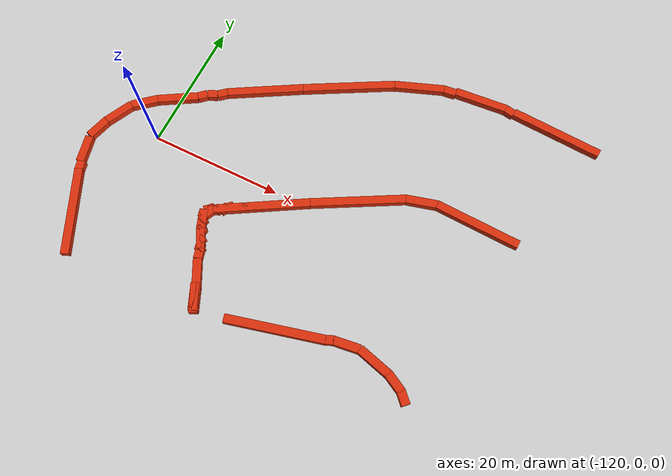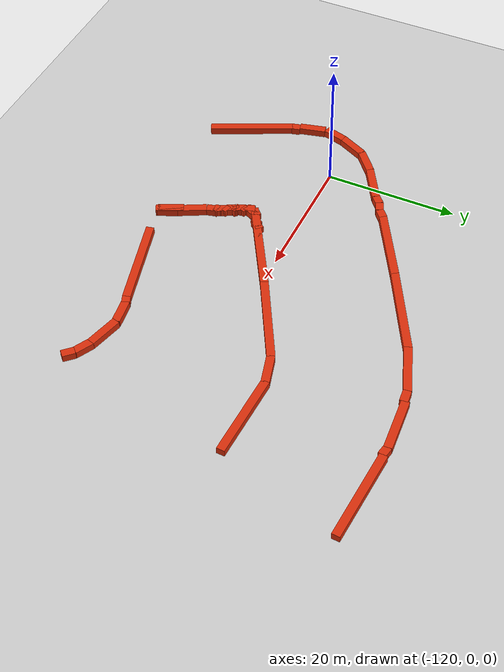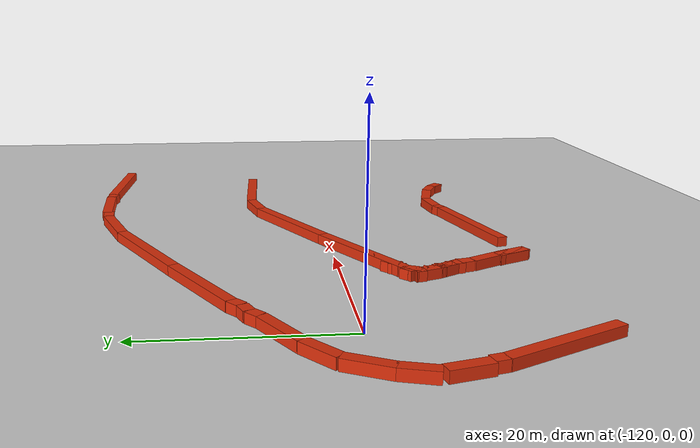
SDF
<sdf version="1.6">
 <world name="default">
  <include><uri>model://ground_plane</uri></include>
  <model name="track_inner_guardrail">
   <static>true</static>
   <link name="seg_191">
    <pose>-72.31 8.13 0.55 0 0 3.1016</pose>
    <collision name="col"><geometry><box><size>12.54 1.20 1.1</size></box></geometry></collision>
    <visual name="vis">
     <geometry><box><size>12.54 1.20 1.1</size></box></geometry>
     <material>
      <ambient>0.35 0.08 0.02 1</ambient>
      <diffuse>0.85 0.18 0.04 1</diffuse>
      <specular>0.2 0.2 0.2 1</specular>
     </material>
    </visual>
   </link>
   <link name="seg_192">
    <pose>-80.67 7.79 0.55 0 0 -2.8781</pose>
    <collision name="col"><geometry><box><size>4.58 1.20 1.1</size></box></geometry></collision>
    <visual name="vis">
     <geometry><box><size>4.58 1.20 1.1</size></box></geometry>
     <material>
      <ambient>0.35 0.08 0.02 1</ambient>
      <diffuse>0.85 0.18 0.04 1</diffuse>
      <specular>0.2 0.2 0.2 1</specular>
     </material>
    </visual>
   </link>
   <link name="seg_193">
    <pose>-88.81 3.93 0.55 0 0 -2.6395</pose>
    <collision name="col"><geometry><box><size>13.77 1.20 1.1</size></box></geometry></collision>
    <visual name="vis">
     <geometry><box><size>13.77 1.20 1.1</size></box></geometry>
     <material>
      <ambient>0.35 0.08 0.02 1</ambient>
      <diffuse>0.85 0.18 0.04 1</diffuse>
      <specular>0.2 0.2 0.2 1</specular>
     </material>
    </visual>
   </link>
   <link name="seg_194">
    <pose>-100.72 -2.83 0.55 0 0 -2.6111</pose>
    <collision name="col"><geometry><box><size>13.86 1.20 1.1</size></box></geometry></collision>
    <visual name="vis">
     <geometry><box><size>13.86 1.20 1.1</size></box></geometry>
     <material>
      <ambient>0.35 0.08 0.02 1</ambient>
      <diffuse>0.85 0.18 0.04 1</diffuse>
      <specular>0.2 0.2 0.2 1</specular>
     </material>
    </visual>
   </link>
   <link name="seg_195">
    <pose>-107.23 -6.68 0.55 0 0 -2.5712</pose>
    <collision name="col"><geometry><box><size>1.51 1.20 1.1</size></box></geometry></collision>
    <visual name="vis">
     <geometry><box><size>1.51 1.20 1.1</size></box></geometry>
     <material>
      <ambient>0.35 0.08 0.02 1</ambient>
      <diffuse>0.85 0.18 0.04 1</diffuse>
      <specular>0.2 0.2 0.2 1</specular>
     </material>
    </visual>
   </link>
   <link name="seg_196">
    <pose>-107.70 -7.55 0.55 0 0 -1.3540</pose>
    <collision name="col"><geometry><box><size>1.12 1.20 1.1</size></box></geometry></collision>
    <visual name="vis">
     <geometry><box><size>1.12 1.20 1.1</size></box></geometry>
     <material>
      <ambient>0.35 0.08 0.02 1</ambient>
      <diffuse>0.85 0.18 0.04 1</diffuse>
      <specular>0.2 0.2 0.2 1</specular>
     </material>
    </visual>
   </link>
   <link name="seg_197">
    <pose>-106.68 -9.79 0.55 0 0 -1.3540</pose>
    <collision name="col"><geometry><box><size>1.12 1.20 1.1</size></box></geometry></collision>
    <visual name="vis">
     <geometry><box><size>1.12 1.20 1.1</size></box></geometry>
     <material>
      <ambient>0.35 0.08 0.02 1</ambient>
      <diffuse>0.85 0.18 0.04 1</diffuse>
      <specular>0.2 0.2 0.2 1</specular>
     </material>
    </visual>
   </link>
   <link name="seg_198">
    <pose>-105.65 -12.02 0.55 0 0 -1.3540</pose>
    <collision name="col"><geometry><box><size>1.12 1.20 1.1</size></box></geometry></collision>
    <visual name="vis">
     <geometry><box><size>1.12 1.20 1.1</size></box></geometry>
     <material>
      <ambient>0.35 0.08 0.02 1</ambient>
      <diffuse>0.85 0.18 0.04 1</diffuse>
      <specular>0.2 0.2 0.2 1</specular>
     </material>
    </visual>
   </link>
   <link name="seg_199">
    <pose>-105.44 -12.11 0.55 0 0 1.2538</pose>
    <collision name="col"><geometry><box><size>0.76 1.20 1.1</size></box></geometry></collision>
    <visual name="vis">
     <geometry><box><size>0.76 1.20 1.1</size></box></geometry>
     <material>
      <ambient>0.35 0.08 0.02 1</ambient>
      <diffuse>0.85 0.18 0.04 1</diffuse>
      <specular>0.2 0.2 0.2 1</specular>
     </material>
    </visual>
   </link>
   <link name="seg_200">
    <pose>-106.02 -10.87 0.55 0 0 1.2538</pose>
    <collision name="col"><geometry><box><size>0.76 1.20 1.1</size></box></geometry></collision>
    <visual name="vis">
     <geometry><box><size>0.76 1.20 1.1</size></box></geometry>
     <material>
      <ambient>0.35 0.08 0.02 1</ambient>
      <diffuse>0.85 0.18 0.04 1</diffuse>
      <specular>0.2 0.2 0.2 1</specular>
     </material>
    </visual>
   </link>
   <link name="seg_201">
    <pose>-106.59 -9.63 0.55 0 0 1.2538</pose>
    <collision name="col"><geometry><box><size>0.76 1.20 1.1</size></box></geometry></collision>
    <visual name="vis">
     <geometry><box><size>0.76 1.20 1.1</size></box></geometry>
     <material>
      <ambient>0.35 0.08 0.02 1</ambient>
      <diffuse>0.85 0.18 0.04 1</diffuse>
      <specular>0.2 0.2 0.2 1</specular>
     </material>
    </visual>
   </link>
   <link name="seg_202">
    <pose>-107.17 -8.39 0.55 0 0 1.2538</pose>
    <collision name="col"><geometry><box><size>0.76 1.20 1.1</size></box></geometry></collision>
    <visual name="vis">
     <geometry><box><size>0.76 1.20 1.1</size></box></geometry>
     <material>
      <ambient>0.35 0.08 0.02 1</ambient>
      <diffuse>0.85 0.18 0.04 1</diffuse>
      <specular>0.2 0.2 0.2 1</specular>
     </material>
    </visual>
   </link>
   <link name="seg_203">
    <pose>-107.06 -6.93 0.55 0 0 1.1276</pose>
    <collision name="col"><geometry><box><size>1.97 1.20 1.1</size></box></geometry></collision>
    <visual name="vis">
     <geometry><box><size>1.97 1.20 1.1</size></box></geometry>
     <material>
      <ambient>0.35 0.08 0.02 1</ambient>
      <diffuse>0.85 0.18 0.04 1</diffuse>
      <specular>0.2 0.2 0.2 1</specular>
     </material>
    </visual>
   </link>
   <link name="seg_204">
    <pose>-106.17 -6.10 0.55 0 0 1.2538</pose>
    <collision name="col"><geometry><box><size>0.76 1.20 1.1</size></box></geometry></collision>
    <visual name="vis">
     <geometry><box><size>0.76 1.20 1.1</size></box></geometry>
     <material>
      <ambient>0.35 0.08 0.02 1</ambient>
      <diffuse>0.85 0.18 0.04 1</diffuse>
      <specular>0.2 0.2 0.2 1</specular>
     </material>
    </visual>
   </link>
   <link name="seg_205">
    <pose>-105.39 -5.58 0.55 0 0 1.0612</pose>
    <collision name="col"><geometry><box><size>1.22 1.20 1.1</size></box></geometry></collision>
    <visual name="vis">
     <geometry><box><size>1.22 1.20 1.1</size></box></geometry>
     <material>
      <ambient>0.35 0.08 0.02 1</ambient>
      <diffuse>0.85 0.18 0.04 1</diffuse>
      <specular>0.2 0.2 0.2 1</specular>
     </material>
    </visual>
   </link>
   <link name="seg_206">
    <pose>-102.78 -3.86 0.55 0 0 1.7331</pose>
    <collision name="col"><geometry><box><size>0.33 1.20 1.1</size></box></geometry></collision>
    <visual name="vis">
     <geometry><box><size>0.33 1.20 1.1</size></box></geometry>
     <material>
      <ambient>0.35 0.08 0.02 1</ambient>
      <diffuse>0.85 0.18 0.04 1</diffuse>
      <specular>0.2 0.2 0.2 1</specular>
     </material>
    </visual>
   </link>
   <link name="seg_207">
    <pose>-104.74 -4.98 0.55 0 0 -2.3533</pose>
    <collision name="col"><geometry><box><size>1.12 1.20 1.1</size></box></geometry></collision>
    <visual name="vis">
     <geometry><box><size>1.12 1.20 1.1</size></box></geometry>
     <material>
      <ambient>0.35 0.08 0.02 1</ambient>
      <diffuse>0.85 0.18 0.04 1</diffuse>
      <specular>0.2 0.2 0.2 1</specular>
     </material>
    </visual>
   </link>
   <link name="seg_208">
    <pose>-107.04 -6.41 0.55 0 0 -2.3533</pose>
    <collision name="col"><geometry><box><size>1.00 1.20 1.1</size></box></geometry></collision>
    <visual name="vis">
     <geometry><box><size>1.00 1.20 1.1</size></box></geometry>
     <material>
      <ambient>0.35 0.08 0.02 1</ambient>
      <diffuse>0.85 0.18 0.04 1</diffuse>
      <specular>0.2 0.2 0.2 1</specular>
     </material>
    </visual>
   </link>
   <link name="seg_209">
    <pose>-107.37 -8.32 0.55 0 0 -1.2262</pose>
    <collision name="col"><geometry><box><size>2.85 1.20 1.1</size></box></geometry></collision>
    <visual name="vis">
     <geometry><box><size>2.85 1.20 1.1</size></box></geometry>
     <material>
      <ambient>0.35 0.08 0.02 1</ambient>
      <diffuse>0.85 0.18 0.04 1</diffuse>
      <specular>0.2 0.2 0.2 1</specular>
     </material>
    </visual>
   </link>
   <link name="seg_210">
    <pose>-106.16 -10.93 0.55 0 0 -1.0537</pose>
    <collision name="col"><geometry><box><size>2.92 1.20 1.1</size></box></geometry></collision>
    <visual name="vis">
     <geometry><box><size>2.92 1.20 1.1</size></box></geometry>
     <material>
      <ambient>0.35 0.08 0.02 1</ambient>
      <diffuse>0.85 0.18 0.04 1</diffuse>
      <specular>0.2 0.2 0.2 1</specular>
     </material>
    </visual>
   </link>
   <link name="seg_211">
    <pose>-105.25 -12.92 0.55 0 0 -1.3124</pose>
    <collision name="col"><geometry><box><size>1.50 1.20 1.1</size></box></geometry></collision>
    <visual name="vis">
     <geometry><box><size>1.50 1.20 1.1</size></box></geometry>
     <material>
      <ambient>0.35 0.08 0.02 1</ambient>
      <diffuse>0.85 0.18 0.04 1</diffuse>
      <specular>0.2 0.2 0.2 1</specular>
     </material>
    </visual>
   </link>
   <link name="seg_212">
    <pose>-104.06 -15.60 0.55 0 0 -1.0975</pose>
    <collision name="col"><geometry><box><size>4.39 1.20 1.1</size></box></geometry></collision>
    <visual name="vis">
     <geometry><box><size>4.39 1.20 1.1</size></box></geometry>
     <material>
      <ambient>0.35 0.08 0.02 1</ambient>
      <diffuse>0.85 0.18 0.04 1</diffuse>
      <specular>0.2 0.2 0.2 1</specular>
     </material>
    </visual>
   </link>
   <link name="seg_213">
    <pose>-102.47 -18.90 0.55 0 0 -1.1580</pose>
    <collision name="col"><geometry><box><size>3.05 1.20 1.1</size></box></geometry></collision>
    <visual name="vis">
     <geometry><box><size>3.05 1.20 1.1</size></box></geometry>
     <material>
      <ambient>0.35 0.08 0.02 1</ambient>
      <diffuse>0.85 0.18 0.04 1</diffuse>
      <specular>0.2 0.2 0.2 1</specular>
     </material>
    </visual>
   </link>
   <link name="seg_238">
    <pose>-102.83 -18.53 0.55 0 0 1.9836</pose>
    <collision name="col"><geometry><box><size>3.86 1.20 1.1</size></box></geometry></collision>
    <visual name="vis">
     <geometry><box><size>3.86 1.20 1.1</size></box></geometry>
     <material>
      <ambient>0.35 0.08 0.02 1</ambient>
      <diffuse>0.85 0.18 0.04 1</diffuse>
      <specular>0.2 0.2 0.2 1</specular>
     </material>
    </visual>
   </link>
   <link name="seg_239">
    <pose>-102.71 -18.64 0.55 0 0 -1.1116</pose>
    <collision name="col"><geometry><box><size>4.18 1.20 1.1</size></box></geometry></collision>
    <visual name="vis">
     <geometry><box><size>4.18 1.20 1.1</size></box></geometry>
     <material>
      <ambient>0.35 0.08 0.02 1</ambient>
      <diffuse>0.85 0.18 0.04 1</diffuse>
      <specular>0.2 0.2 0.2 1</specular>
     </material>
    </visual>
   </link>
   <link name="seg_242">
    <pose>-91.02 -17.57 0.55 0 0 0.2516</pose>
    <collision name="col"><geometry><box><size>13.94 1.20 1.1</size></box></geometry></collision>
    <visual name="vis">
     <geometry><box><size>13.94 1.20 1.1</size></box></geometry>
     <material>
      <ambient>0.35 0.08 0.02 1</ambient>
      <diffuse>0.85 0.18 0.04 1</diffuse>
      <specular>0.2 0.2 0.2 1</specular>
     </material>
    </visual>
   </link>
   <link name="seg_243">
    <pose>-83.82 -15.64 0.55 0 0 0.3868</pose>
    <collision name="col"><geometry><box><size>1.23 1.20 1.1</size></box></geometry></collision>
    <visual name="vis">
     <geometry><box><size>1.23 1.20 1.1</size></box></geometry>
     <material>
      <ambient>0.35 0.08 0.02 1</ambient>
      <diffuse>0.85 0.18 0.04 1</diffuse>
      <specular>0.2 0.2 0.2 1</specular>
     </material>
    </visual>
   </link>
   <link name="seg_244">
    <pose>-81.49 -15.19 0.55 0 0 0.1324</pose>
    <collision name="col"><geometry><box><size>3.78 1.20 1.1</size></box></geometry></collision>
    <visual name="vis">
     <geometry><box><size>3.78 1.20 1.1</size></box></geometry>
     <material>
      <ambient>0.35 0.08 0.02 1</ambient>
      <diffuse>0.85 0.18 0.04 1</diffuse>
      <specular>0.2 0.2 0.2 1</specular>
     </material>
    </visual>
   </link>
   <link name="seg_245">
    <pose>-77.27 -15.56 0.55 0 0 -0.2590</pose>
    <collision name="col"><geometry><box><size>4.96 1.20 1.1</size></box></geometry></collision>
    <visual name="vis">
     <geometry><box><size>4.96 1.20 1.1</size></box></geometry>
     <material>
      <ambient>0.35 0.08 0.02 1</ambient>
      <diffuse>0.85 0.18 0.04 1</diffuse>
      <specular>0.2 0.2 0.2 1</specular>
     </material>
    </visual>
   </link>
   <link name="seg_246">
    <pose>-73.77 -16.80 0.55 0 0 -0.4922</pose>
    <collision name="col"><geometry><box><size>2.75 1.20 1.1</size></box></geometry></collision>
    <visual name="vis">
     <geometry><box><size>2.75 1.20 1.1</size></box></geometry>
     <material>
      <ambient>0.35 0.08 0.02 1</ambient>
      <diffuse>0.85 0.18 0.04 1</diffuse>
      <specular>0.2 0.2 0.2 1</specular>
     </material>
    </visual>
   </link>
   <link name="seg_247">
    <pose>-72.00 -18.07 0.55 0 0 -0.8108</pose>
    <collision name="col"><geometry><box><size>1.88 1.20 1.1</size></box></geometry></collision>
    <visual name="vis">
     <geometry><box><size>1.88 1.20 1.1</size></box></geometry>
     <material>
      <ambient>0.35 0.08 0.02 1</ambient>
      <diffuse>0.85 0.18 0.04 1</diffuse>
      <specular>0.2 0.2 0.2 1</specular>
     </material>
    </visual>
   </link>
  </model>
  <model name="track_outer_guardrail">
   <static>true</static>
   <link name="seg_120">
    <pose>-67.22 26.66 0.55 0 0 3.0756</pose>
    <collision name="col"><geometry><box><size>13.57 1.20 1.1</size></box></geometry></collision>
    <visual name="vis">
     <geometry><box><size>13.57 1.20 1.1</size></box></geometry>
     <material>
      <ambient>0.35 0.08 0.02 1</ambient>
      <diffuse>0.85 0.18 0.04 1</diffuse>
      <specular>0.2 0.2 0.2 1</specular>
     </material>
    </visual>
   </link>
   <link name="seg_121">
    <pose>-74.64 27.00 0.55 0 0 2.9411</pose>
    <collision name="col"><geometry><box><size>1.42 1.20 1.1</size></box></geometry></collision>
    <visual name="vis">
     <geometry><box><size>1.42 1.20 1.1</size></box></geometry>
     <material>
      <ambient>0.35 0.08 0.02 1</ambient>
      <diffuse>0.85 0.18 0.04 1</diffuse>
      <specular>0.2 0.2 0.2 1</specular>
     </material>
    </visual>
   </link>
   <link name="seg_122">
    <pose>-79.24 26.84 0.55 0 0 -3.0642</pose>
    <collision name="col"><geometry><box><size>7.96 1.20 1.1</size></box></geometry></collision>
    <visual name="vis">
     <geometry><box><size>7.96 1.20 1.1</size></box></geometry>
     <material>
      <ambient>0.35 0.08 0.02 1</ambient>
      <diffuse>0.85 0.18 0.04 1</diffuse>
      <specular>0.2 0.2 0.2 1</specular>
     </material>
    </visual>
   </link>
   <link name="seg_123">
    <pose>-84.04 26.20 0.55 0 0 -3.0507</pose>
    <collision name="col"><geometry><box><size>1.87 1.20 1.1</size></box></geometry></collision>
    <visual name="vis">
     <geometry><box><size>1.87 1.20 1.1</size></box></geometry>
     <material>
      <ambient>0.35 0.08 0.02 1</ambient>
      <diffuse>0.85 0.18 0.04 1</diffuse>
      <specular>0.2 0.2 0.2 1</specular>
     </material>
    </visual>
   </link>
   <link name="seg_124">
    <pose>-88.49 24.81 0.55 0 0 -2.7853</pose>
    <collision name="col"><geometry><box><size>7.63 1.20 1.1</size></box></geometry></collision>
    <visual name="vis">
     <geometry><box><size>7.63 1.20 1.1</size></box></geometry>
     <material>
      <ambient>0.35 0.08 0.02 1</ambient>
      <diffuse>0.85 0.18 0.04 1</diffuse>
      <specular>0.2 0.2 0.2 1</specular>
     </material>
    </visual>
   </link>
   <link name="seg_125">
    <pose>-98.08 20.16 0.55 0 0 -2.6395</pose>
    <collision name="col"><geometry><box><size>13.99 1.20 1.1</size></box></geometry></collision>
    <visual name="vis">
     <geometry><box><size>13.99 1.20 1.1</size></box></geometry>
     <material>
      <ambient>0.35 0.08 0.02 1</ambient>
      <diffuse>0.85 0.18 0.04 1</diffuse>
      <specular>0.2 0.2 0.2 1</specular>
     </material>
    </visual>
   </link>
   <link name="seg_126">
    <pose>-109.15 13.94 0.55 0 0 -2.6176</pose>
    <collision name="col"><geometry><box><size>11.64 1.20 1.1</size></box></geometry></collision>
    <visual name="vis">
     <geometry><box><size>11.64 1.20 1.1</size></box></geometry>
     <material>
      <ambient>0.35 0.08 0.02 1</ambient>
      <diffuse>0.85 0.18 0.04 1</diffuse>
      <specular>0.2 0.2 0.2 1</specular>
     </material>
    </visual>
   </link>
   <link name="seg_127">
    <pose>-114.72 10.55 0.55 0 0 -2.4209</pose>
    <collision name="col"><geometry><box><size>1.53 1.20 1.1</size></box></geometry></collision>
    <visual name="vis">
     <geometry><box><size>1.53 1.20 1.1</size></box></geometry>
     <material>
      <ambient>0.35 0.08 0.02 1</ambient>
      <diffuse>0.85 0.18 0.04 1</diffuse>
      <specular>0.2 0.2 0.2 1</specular>
     </material>
    </visual>
   </link>
   <link name="seg_128">
    <pose>-115.99 9.76 0.55 0 0 -2.7430</pose>
    <collision name="col"><geometry><box><size>1.52 1.20 1.1</size></box></geometry></collision>
    <visual name="vis">
     <geometry><box><size>1.52 1.20 1.1</size></box></geometry>
     <material>
      <ambient>0.35 0.08 0.02 1</ambient>
      <diffuse>0.85 0.18 0.04 1</diffuse>
      <specular>0.2 0.2 0.2 1</specular>
     </material>
    </visual>
   </link>
   <link name="seg_129">
    <pose>-117.24 8.96 0.55 0 0 -2.4032</pose>
    <collision name="col"><geometry><box><size>1.49 1.20 1.1</size></box></geometry></collision>
    <visual name="vis">
     <geometry><box><size>1.49 1.20 1.1</size></box></geometry>
     <material>
      <ambient>0.35 0.08 0.02 1</ambient>
      <diffuse>0.85 0.18 0.04 1</diffuse>
      <specular>0.2 0.2 0.2 1</specular>
     </material>
    </visual>
   </link>
   <link name="seg_130">
    <pose>-120.40 6.91 0.55 0 0 -2.6055</pose>
    <collision name="col"><geometry><box><size>6.06 1.20 1.1</size></box></geometry></collision>
    <visual name="vis">
     <geometry><box><size>6.06 1.20 1.1</size></box></geometry>
     <material>
      <ambient>0.35 0.08 0.02 1</ambient>
      <diffuse>0.85 0.18 0.04 1</diffuse>
      <specular>0.2 0.2 0.2 1</specular>
     </material>
    </visual>
   </link>
   <link name="seg_131">
    <pose>-124.52 4.07 0.55 0 0 -2.4346</pose>
    <collision name="col"><geometry><box><size>4.09 1.20 1.1</size></box></geometry></collision>
    <visual name="vis">
     <geometry><box><size>4.09 1.20 1.1</size></box></geometry>
     <material>
      <ambient>0.35 0.08 0.02 1</ambient>
      <diffuse>0.85 0.18 0.04 1</diffuse>
      <specular>0.2 0.2 0.2 1</specular>
     </material>
    </visual>
   </link>
   <link name="seg_132">
    <pose>-127.02 0.80 0.55 0 0 -2.0249</pose>
    <collision name="col"><geometry><box><size>4.41 1.20 1.1</size></box></geometry></collision>
    <visual name="vis">
     <geometry><box><size>4.41 1.20 1.1</size></box></geometry>
     <material>
      <ambient>0.35 0.08 0.02 1</ambient>
      <diffuse>0.85 0.18 0.04 1</diffuse>
      <specular>0.2 0.2 0.2 1</specular>
     </material>
    </visual>
   </link>
   <link name="seg_133">
    <pose>-128.40 -2.70 0.55 0 0 -1.8424</pose>
    <collision name="col"><geometry><box><size>3.38 1.20 1.1</size></box></geometry></collision>
    <visual name="vis">
     <geometry><box><size>3.38 1.20 1.1</size></box></geometry>
     <material>
      <ambient>0.35 0.08 0.02 1</ambient>
      <diffuse>0.85 0.18 0.04 1</diffuse>
      <specular>0.2 0.2 0.2 1</specular>
     </material>
    </visual>
   </link>
   <link name="seg_134">
    <pose>-128.25 -6.49 0.55 0 0 -1.3362</pose>
    <collision name="col"><geometry><box><size>4.03 1.20 1.1</size></box></geometry></collision>
    <visual name="vis">
     <geometry><box><size>4.03 1.20 1.1</size></box></geometry>
     <material>
      <ambient>0.35 0.08 0.02 1</ambient>
      <diffuse>0.85 0.18 0.04 1</diffuse>
      <specular>0.2 0.2 0.2 1</specular>
     </material>
    </visual>
   </link>
   <link name="seg_135">
    <pose>-127.39 -9.02 0.55 0 0 -1.3362</pose>
    <collision name="col"><geometry><box><size>1.30 1.20 1.1</size></box></geometry></collision>
    <visual name="vis">
     <geometry><box><size>1.30 1.20 1.1</size></box></geometry>
     <material>
      <ambient>0.35 0.08 0.02 1</ambient>
      <diffuse>0.85 0.18 0.04 1</diffuse>
      <specular>0.2 0.2 0.2 1</specular>
     </material>
    </visual>
   </link>
   <link name="seg_136">
    <pose>-124.56 -15.44 0.55 0 0 -1.1373</pose>
    <collision name="col"><geometry><box><size>12.87 1.20 1.1</size></box></geometry></collision>
    <visual name="vis">
     <geometry><box><size>12.87 1.20 1.1</size></box></geometry>
     <material>
      <ambient>0.35 0.08 0.02 1</ambient>
      <diffuse>0.85 0.18 0.04 1</diffuse>
      <specular>0.2 0.2 0.2 1</specular>
     </material>
    </visual>
   </link>
  </model>
 </world>
</sdf>
